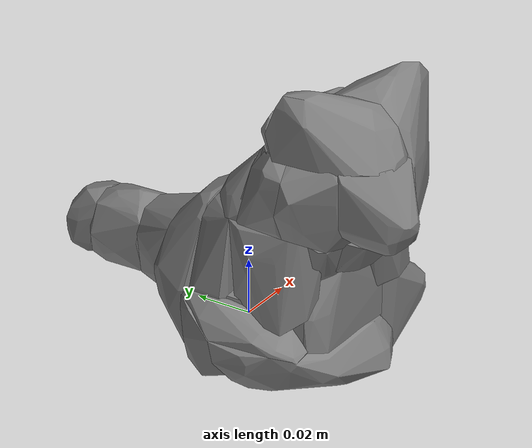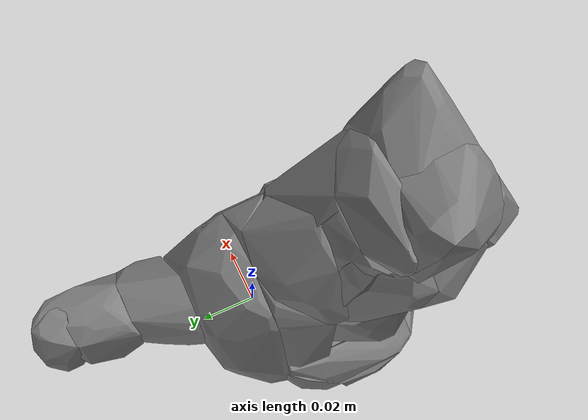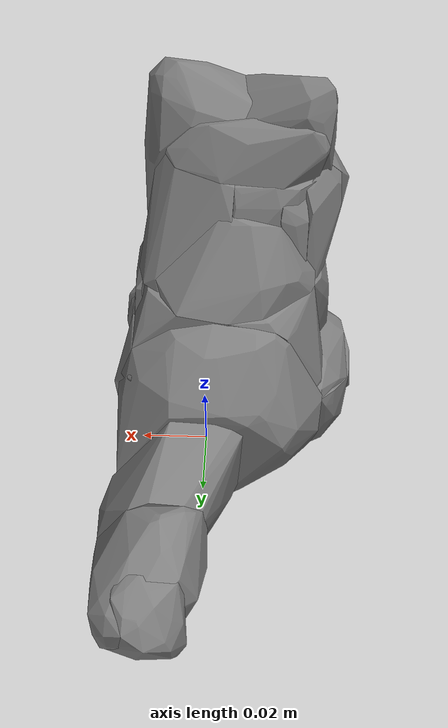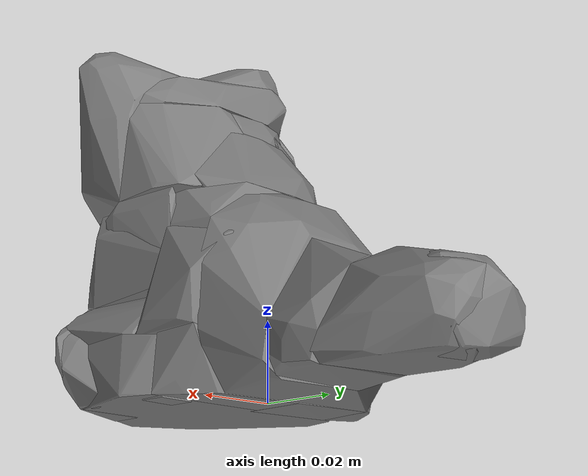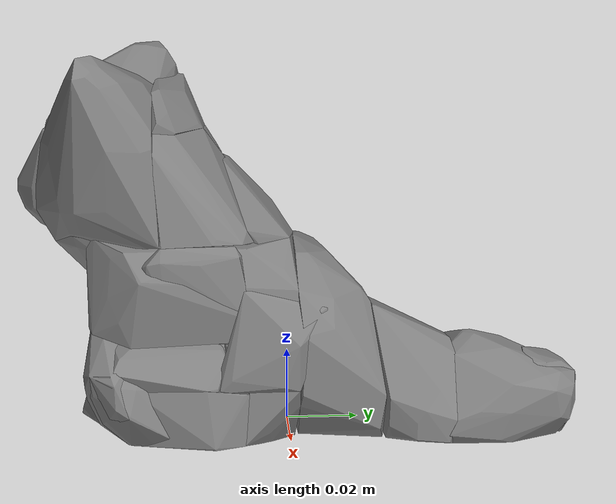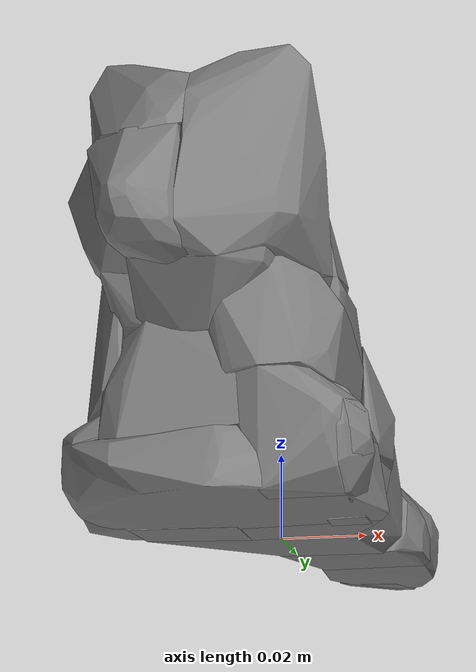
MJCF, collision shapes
<mujoco model="raccoon plushie">
  <asset>
    <texture type="2d" name="texture" file="texture.png" />
    <material name="material_0" texture="texture" specular="0.5" shininess="0.5" />
    <mesh name="model" file="model.obj" scale="0.5 0.5 0.5" />
    <mesh name="model_collision_0" file="model_collision_0.obj" scale="0.5 0.5 0.5" />
    <mesh name="model_collision_1" file="model_collision_1.obj" scale="0.5 0.5 0.5" />
    <mesh name="model_collision_2" file="model_collision_2.obj" scale="0.5 0.5 0.5" />
    <mesh name="model_collision_3" file="model_collision_3.obj" scale="0.5 0.5 0.5" />
    <mesh name="model_collision_4" file="model_collision_4.obj" scale="0.5 0.5 0.5" />
    <mesh name="model_collision_5" file="model_collision_5.obj" scale="0.5 0.5 0.5" />
    <mesh name="model_collision_6" file="model_collision_6.obj" scale="0.5 0.5 0.5" />
    <mesh name="model_collision_7" file="model_collision_7.obj" scale="0.5 0.5 0.5" />
    <mesh name="model_collision_8" file="model_collision_8.obj" scale="0.5 0.5 0.5" />
    <mesh name="model_collision_9" file="model_collision_9.obj" scale="0.5 0.5 0.5" />
    <mesh name="model_collision_10" file="model_collision_10.obj" scale="0.5 0.5 0.5" />
    <mesh name="model_collision_11" file="model_collision_11.obj" scale="0.5 0.5 0.5" />
    <mesh name="model_collision_12" file="model_collision_12.obj" scale="0.5 0.5 0.5" />
    <mesh name="model_collision_13" file="model_collision_13.obj" scale="0.5 0.5 0.5" />
    <mesh name="model_collision_14" file="model_collision_14.obj" scale="0.5 0.5 0.5" />
    <mesh name="model_collision_15" file="model_collision_15.obj" scale="0.5 0.5 0.5" />
    <mesh name="model_collision_16" file="model_collision_16.obj" scale="0.5 0.5 0.5" />
    <mesh name="model_collision_17" file="model_collision_17.obj" scale="0.5 0.5 0.5" />
    <mesh name="model_collision_18" file="model_collision_18.obj" scale="0.5 0.5 0.5" />
    <mesh name="model_collision_19" file="model_collision_19.obj" scale="0.5 0.5 0.5" />
    <mesh name="model_collision_20" file="model_collision_20.obj" scale="0.5 0.5 0.5" />
    <mesh name="model_collision_21" file="model_collision_21.obj" scale="0.5 0.5 0.5" />
    <mesh name="model_collision_22" file="model_collision_22.obj" scale="0.5 0.5 0.5" />
    <mesh name="model_collision_23" file="model_collision_23.obj" scale="0.5 0.5 0.5" />
    <mesh name="model_collision_24" file="model_collision_24.obj" scale="0.5 0.5 0.5" />
    <mesh name="model_collision_25" file="model_collision_25.obj" scale="0.5 0.5 0.5" />
    <mesh name="model_collision_26" file="model_collision_26.obj" scale="0.5 0.5 0.5" />
    <mesh name="model_collision_27" file="model_collision_27.obj" scale="0.5 0.5 0.5" />
    <mesh name="model_collision_28" file="model_collision_28.obj" scale="0.5 0.5 0.5" />
    <mesh name="model_collision_29" file="model_collision_29.obj" scale="0.5 0.5 0.5" />
    <mesh name="model_collision_30" file="model_collision_30.obj" scale="0.5 0.5 0.5" />
    <mesh name="model_collision_31" file="model_collision_31.obj" scale="0.5 0.5 0.5" />
  </asset>
  <worldbody>
    <body name="raccoon plushie">
      <geom material="material_0" mesh="model" type="mesh" contype="0" conaffinity="0" group="2" />
      <geom mesh="model_collision_0" type="mesh" group="3" />
      <geom mesh="model_collision_1" type="mesh" group="3" />
      <geom mesh="model_collision_2" type="mesh" group="3" />
      <geom mesh="model_collision_3" type="mesh" group="3" />
      <geom mesh="model_collision_4" type="mesh" group="3" />
      <geom mesh="model_collision_5" type="mesh" group="3" />
      <geom mesh="model_collision_6" type="mesh" group="3" />
      <geom mesh="model_collision_7" type="mesh" group="3" />
      <geom mesh="model_collision_8" type="mesh" group="3" />
      <geom mesh="model_collision_9" type="mesh" group="3" />
      <geom mesh="model_collision_10" type="mesh" group="3" />
      <geom mesh="model_collision_11" type="mesh" group="3" />
      <geom mesh="model_collision_12" type="mesh" group="3" />
      <geom mesh="model_collision_13" type="mesh" group="3" />
      <geom mesh="model_collision_14" type="mesh" group="3" />
      <geom mesh="model_collision_15" type="mesh" group="3" />
      <geom mesh="model_collision_16" type="mesh" group="3" />
      <geom mesh="model_collision_17" type="mesh" group="3" />
      <geom mesh="model_collision_18" type="mesh" group="3" />
      <geom mesh="model_collision_19" type="mesh" group="3" />
      <geom mesh="model_collision_20" type="mesh" group="3" />
      <geom mesh="model_collision_21" type="mesh" group="3" />
      <geom mesh="model_collision_22" type="mesh" group="3" />
      <geom mesh="model_collision_23" type="mesh" group="3" />
      <geom mesh="model_collision_24" type="mesh" group="3" />
      <geom mesh="model_collision_25" type="mesh" group="3" />
      <geom mesh="model_collision_26" type="mesh" group="3" />
      <geom mesh="model_collision_27" type="mesh" group="3" />
      <geom mesh="model_collision_28" type="mesh" group="3" />
      <geom mesh="model_collision_29" type="mesh" group="3" />
      <geom mesh="model_collision_30" type="mesh" group="3" />
      <geom mesh="model_collision_31" type="mesh" group="3" />
    </body>
  </worldbody>
</mujoco>
